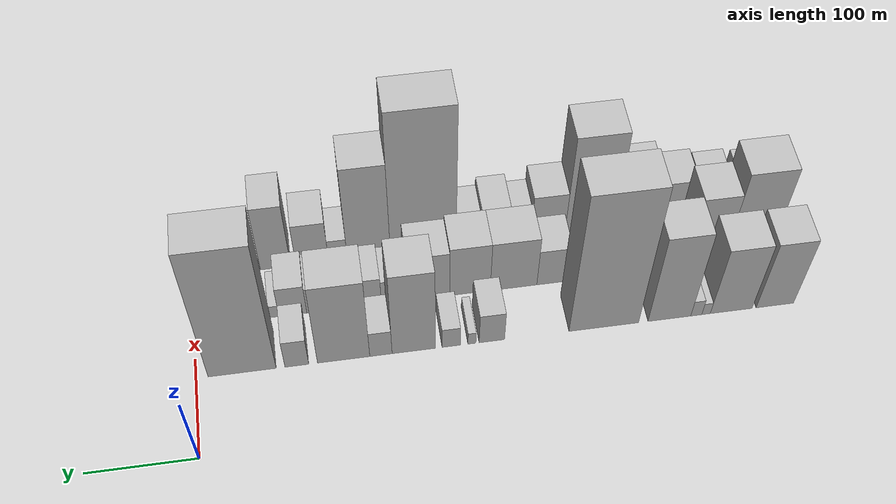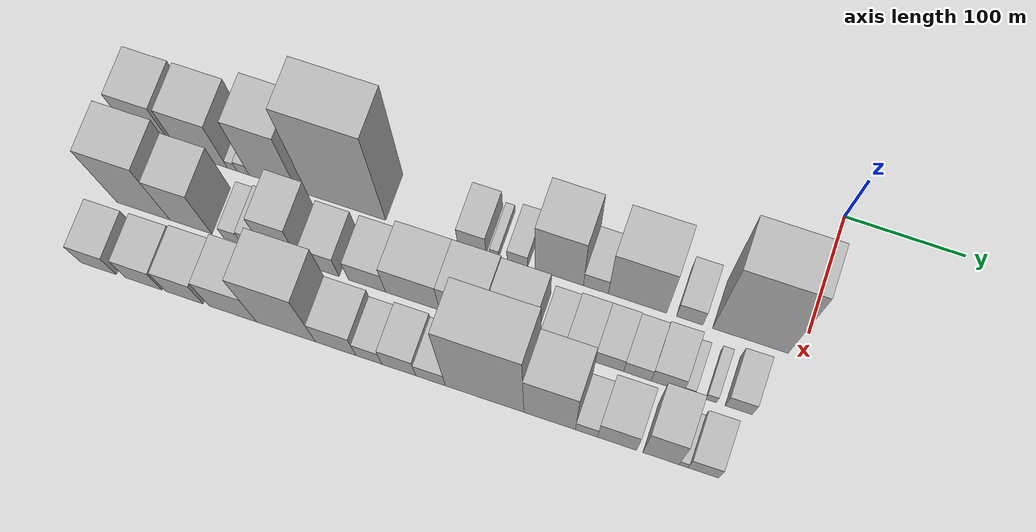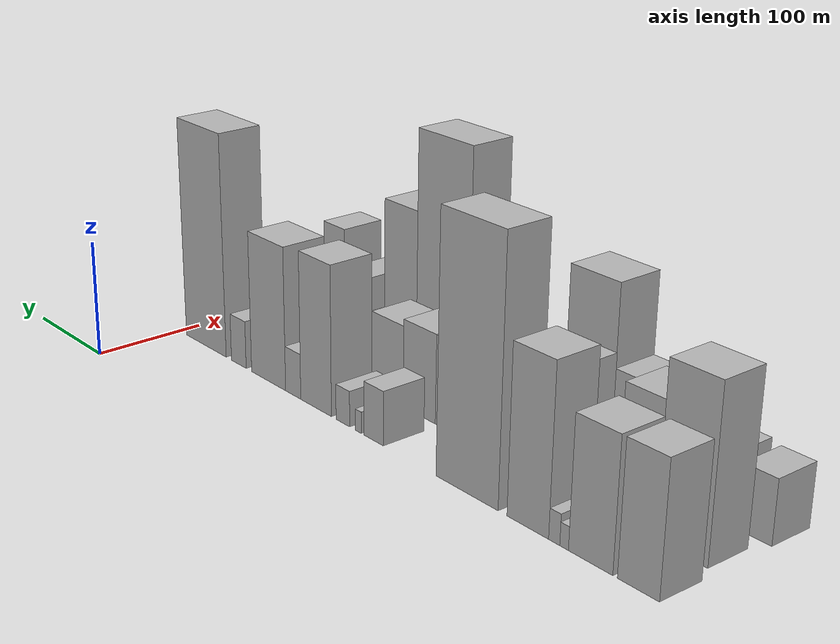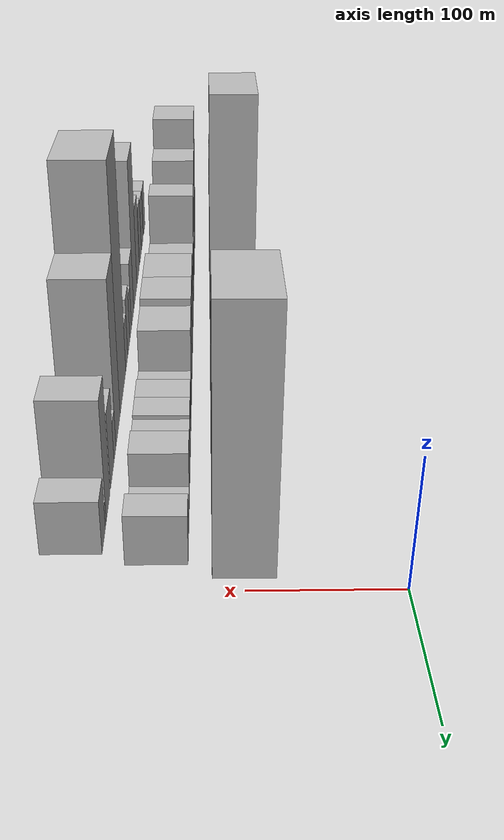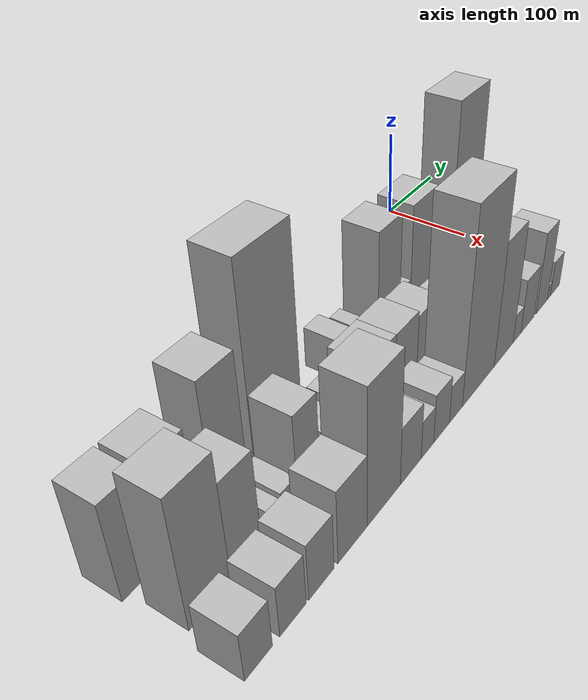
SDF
<sdf version="1.6">
 <world name="default">
  <model name="building_1">
   <static>1</static>
   <pose>100.0000 -541.8495 0 0.000000 0.000000 0.000000</pose>
   <link name="link">
    <pose>0 0 51.00 0 0 0</pose>
    <collision name="collision"><geometry><box><size>40.0000 36.3010 102.0000</size></box></geometry></collision>
    <visual name="visual">
     <cast_shadows>0</cast_shadows>
     <geometry><box><size>40.0000 36.3010 102.0000</size></box></geometry>
     <material>
      <script>
       <uri>model://HANNAS_wall/materials/scripts</uri>
       <uri>model://HANNAS_wall/materials/textures</uri>
       <name>vrc/HANNAS_wall</name>
      </script>
     </material>
    </visual>
   </link>
  </model>
  <model name="building_2">
   <static>1</static>
   <pose>100.0000 -499.5074 0 0.000000 0.000000 0.000000</pose>
   <link name="link">
    <pose>0 0 51.00 0 0 0</pose>
    <collision name="collision"><geometry><box><size>40.0000 40.3831 102.0000</size></box></geometry></collision>
    <visual name="visual">
     <cast_shadows>0</cast_shadows>
     <geometry><box><size>40.0000 40.3831 102.0000</size></box></geometry>
     <material>
      <script>
       <uri>model://HANNAS_wall/materials/scripts</uri>
       <uri>model://HANNAS_wall/materials/textures</uri>
       <name>vrc/HANNAS_wall</name>
      </script>
     </material>
    </visual>
   </link>
  </model>
  <model name="building_3">
   <static>1</static>
   <pose>100.0000 -475.2443 0 0.000000 0.000000 0.000000</pose>
   <link name="link">
    <pose>0 0 9.00 0 0 0</pose>
    <collision name="collision"><geometry><box><size>40.0000 8.1431 18.0000</size></box></geometry></collision>
    <visual name="visual">
     <cast_shadows>0</cast_shadows>
     <geometry><box><size>40.0000 8.1431 18.0000</size></box></geometry>
     <material>
      <script>
       <uri>model://HANNAS_wall/materials/scripts</uri>
       <uri>model://HANNAS_wall/materials/textures</uri>
       <name>vrc/HANNAS_wall</name>
      </script>
     </material>
    </visual>
   </link>
  </model>
  <model name="building_4">
   <static>1</static>
   <pose>100.0000 -465.8494 0 0.000000 0.000000 0.000000</pose>
   <link name="link">
    <pose>0 0 12.00 0 0 0</pose>
    <collision name="collision"><geometry><box><size>40.0000 10.6468 24.0000</size></box></geometry></collision>
    <visual name="visual">
     <cast_shadows>0</cast_shadows>
     <geometry><box><size>40.0000 10.6468 24.0000</size></box></geometry>
     <material>
      <script>
       <uri>model://HANNAS_wall/materials/scripts</uri>
       <uri>model://HANNAS_wall/materials/textures</uri>
       <name>vrc/HANNAS_wall</name>
      </script>
     </material>
    </visual>
   </link>
  </model>
  <model name="building_5">
   <static>1</static>
   <pose>100.0000 -440.0433 0 0.000000 0.000000 0.000000</pose>
   <link name="link">
    <pose>0 0 66.00 0 0 0</pose>
    <collision name="collision"><geometry><box><size>40.0000 40.9655 132.0000</size></box></geometry></collision>
    <visual name="visual">
     <cast_shadows>0</cast_shadows>
     <geometry><box><size>40.0000 40.9655 132.0000</size></box></geometry>
     <material>
      <script>
       <uri>model://HANNAS_wall/materials/scripts</uri>
       <uri>model://HANNAS_wall/materials/textures</uri>
       <name>vrc/HANNAS_wall</name>
      </script>
     </material>
    </visual>
   </link>
  </model>
  <model name="building_6">
   <static>1</static>
   <pose>100.0000 -377.4662 0 0.000000 0.000000 0.000000</pose>
   <link name="link">
    <pose>0 0 103.50 0 0 0</pose>
    <collision name="collision"><geometry><box><size>40.0000 66.1885 207.0000</size></box></geometry></collision>
    <visual name="visual">
     <cast_shadows>0</cast_shadows>
     <geometry><box><size>40.0000 66.1885 207.0000</size></box></geometry>
     <material>
      <script>
       <uri>model://HANNAS_wall/materials/scripts</uri>
       <uri>model://HANNAS_wall/materials/textures</uri>
       <name>vrc/HANNAS_wall</name>
      </script>
     </material>
    </visual>
   </link>
  </model>
  <model name="building_7">
   <static>1</static>
   <pose>100.0000 -271.7375 0 0.000000 0.000000 0.000000</pose>
   <link name="link">
    <pose>0 0 22.50 0 0 0</pose>
    <collision name="collision"><geometry><box><size>40.0000 23.7564 45.0000</size></box></geometry></collision>
    <visual name="visual">
     <cast_shadows>0</cast_shadows>
     <geometry><box><size>40.0000 23.7564 45.0000</size></box></geometry>
     <material>
      <script>
       <uri>model://HANNAS_wall/materials/scripts</uri>
       <uri>model://HANNAS_wall/materials/textures</uri>
       <name>vrc/HANNAS_wall</name>
      </script>
     </material>
    </visual>
   </link>
  </model>
  <model name="building_8">
   <static>1</static>
   <pose>100.0000 -253.1174 0 0.000000 0.000000 0.000000</pose>
   <link name="link">
    <pose>0 0 9.00 0 0 0</pose>
    <collision name="collision"><geometry><box><size>40.0000 7.4837 18.0000</size></box></geometry></collision>
    <visual name="visual">
     <cast_shadows>0</cast_shadows>
     <geometry><box><size>40.0000 7.4837 18.0000</size></box></geometry>
     <material>
      <script>
       <uri>model://HANNAS_wall/materials/scripts</uri>
       <uri>model://HANNAS_wall/materials/textures</uri>
       <name>vrc/HANNAS_wall</name>
      </script>
     </material>
    </visual>
   </link>
  </model>
  <model name="building_9">
   <static>1</static>
   <pose>100.0000 -233.8232 0 0.000000 0.000000 0.000000</pose>
   <link name="link">
    <pose>0 0 15.00 0 0 0</pose>
    <collision name="collision"><geometry><box><size>40.0000 17.1046 30.0000</size></box></geometry></collision>
    <visual name="visual">
     <cast_shadows>0</cast_shadows>
     <geometry><box><size>40.0000 17.1046 30.0000</size></box></geometry>
     <material>
      <script>
       <uri>model://HANNAS_wall/materials/scripts</uri>
       <uri>model://HANNAS_wall/materials/textures</uri>
       <name>vrc/HANNAS_wall</name>
      </script>
     </material>
    </visual>
   </link>
  </model>
  <model name="building_10">
   <static>1</static>
   <pose>100.0000 -199.1108 0 0.000000 0.000000 0.000000</pose>
   <link name="link">
    <pose>0 0 63.00 0 0 0</pose>
    <collision name="collision"><geometry><box><size>40.0000 40.3202 126.0000</size></box></geometry></collision>
    <visual name="visual">
     <cast_shadows>0</cast_shadows>
     <geometry><box><size>40.0000 40.3202 126.0000</size></box></geometry>
     <material>
      <script>
       <uri>model://HANNAS_wall/materials/scripts</uri>
       <uri>model://HANNAS_wall/materials/textures</uri>
       <name>vrc/HANNAS_wall</name>
      </script>
     </material>
    </visual>
   </link>
  </model>
  <model name="building_11">
   <static>1</static>
   <pose>100.0000 -168.6523 0 0.000000 0.000000 0.000000</pose>
   <link name="link">
    <pose>0 0 19.50 0 0 0</pose>
    <collision name="collision"><geometry><box><size>40.0000 20.5967 39.0000</size></box></geometry></collision>
    <visual name="visual">
     <cast_shadows>0</cast_shadows>
     <geometry><box><size>40.0000 20.5967 39.0000</size></box></geometry>
     <material>
      <script>
       <uri>model://HANNAS_wall/materials/scripts</uri>
       <uri>model://HANNAS_wall/materials/textures</uri>
       <name>vrc/HANNAS_wall</name>
      </script>
     </material>
    </visual>
   </link>
  </model>
  <model name="building_12">
   <static>1</static>
   <pose>100.0000 -134.3191 0 0.000000 0.000000 0.000000</pose>
   <link name="link">
    <pose>0 0 61.50 0 0 0</pose>
    <collision name="collision"><geometry><box><size>40.0000 48.0697 123.0000</size></box></geometry></collision>
    <visual name="visual">
     <cast_shadows>0</cast_shadows>
     <geometry><box><size>40.0000 48.0697 123.0000</size></box></geometry>
     <material>
      <script>
       <uri>model://HANNAS_wall/materials/scripts</uri>
       <uri>model://HANNAS_wall/materials/textures</uri>
       <name>vrc/HANNAS_wall</name>
      </script>
     </material>
    </visual>
   </link>
  </model>
  <model name="building_13">
   <static>1</static>
   <pose>100.0000 -91.4313 0 0.000000 0.000000 0.000000</pose>
   <link name="link">
    <pose>0 0 21.00 0 0 0</pose>
    <collision name="collision"><geometry><box><size>40.0000 21.7058 42.0000</size></box></geometry></collision>
    <visual name="visual">
     <cast_shadows>0</cast_shadows>
     <geometry><box><size>40.0000 21.7058 42.0000</size></box></geometry>
     <material>
      <script>
       <uri>model://HANNAS_wall/materials/scripts</uri>
       <uri>model://HANNAS_wall/materials/textures</uri>
       <name>vrc/HANNAS_wall</name>
      </script>
     </material>
    </visual>
   </link>
  </model>
  <model name="building_14">
   <static>1</static>
   <pose>100.0000 -41.6882 0 0.000000 0.000000 0.000000</pose>
   <link name="link">
    <pose>0 0 97.50 0 0 0</pose>
    <collision name="collision"><geometry><box><size>40.0000 61.7805 195.0000</size></box></geometry></collision>
    <visual name="visual">
     <cast_shadows>0</cast_shadows>
     <geometry><box><size>40.0000 61.7805 195.0000</size></box></geometry>
     <material>
      <script>
       <uri>model://HANNAS_wall/materials/scripts</uri>
       <uri>model://HANNAS_wall/materials/textures</uri>
       <name>vrc/HANNAS_wall</name>
      </script>
     </material>
    </visual>
   </link>
  </model>
  <model name="building_30">
   <static>1</static>
   <pose>155.0000 -529.2739 0 0.000000 0.000000 0.000000</pose>
   <link name="link">
    <pose>0 0 67.50 0 0 0</pose>
    <collision name="collision"><geometry><box><size>40.0000 45.4523 135.0000</size></box></geometry></collision>
    <visual name="visual">
     <cast_shadows>0</cast_shadows>
     <geometry><box><size>40.0000 45.4523 135.0000</size></box></geometry>
     <material>
      <script>
       <uri>model://HANNAS_wall/materials/scripts</uri>
       <uri>model://HANNAS_wall/materials/textures</uri>
       <name>vrc/HANNAS_wall</name>
      </script>
     </material>
    </visual>
   </link>
  </model>
  <model name="building_31">
   <static>1</static>
   <pose>155.0000 -488.7142 0 0.000000 0.000000 0.000000</pose>
   <link name="link">
    <pose>0 0 52.50 0 0 0</pose>
    <collision name="collision"><geometry><box><size>40.0000 35.6670 105.0000</size></box></geometry></collision>
    <visual name="visual">
     <cast_shadows>0</cast_shadows>
     <geometry><box><size>40.0000 35.6670 105.0000</size></box></geometry>
     <material>
      <script>
       <uri>model://HANNAS_wall/materials/scripts</uri>
       <uri>model://HANNAS_wall/materials/textures</uri>
       <name>vrc/HANNAS_wall</name>
      </script>
     </material>
    </visual>
   </link>
  </model>
  <model name="building_32">
   <static>1</static>
   <pose>155.0000 -453.1884 0 0.000000 0.000000 0.000000</pose>
   <link name="link">
    <pose>0 0 15.00 0 0 0</pose>
    <collision name="collision"><geometry><box><size>40.0000 15.3847 30.0000</size></box></geometry></collision>
    <visual name="visual">
     <cast_shadows>0</cast_shadows>
     <geometry><box><size>40.0000 15.3847 30.0000</size></box></geometry>
     <material>
      <script>
       <uri>model://HANNAS_wall/materials/scripts</uri>
       <uri>model://HANNAS_wall/materials/textures</uri>
       <name>vrc/HANNAS_wall</name>
      </script>
     </material>
    </visual>
   </link>
  </model>
  <model name="building_33">
   <static>1</static>
   <pose>155.0000 -435.5298 0 0.000000 0.000000 0.000000</pose>
   <link name="link">
    <pose>0 0 18.00 0 0 0</pose>
    <collision name="collision"><geometry><box><size>40.0000 19.9325 36.0000</size></box></geometry></collision>
    <visual name="visual">
     <cast_shadows>0</cast_shadows>
     <geometry><box><size>40.0000 19.9325 36.0000</size></box></geometry>
     <material>
      <script>
       <uri>model://HANNAS_wall/materials/scripts</uri>
       <uri>model://HANNAS_wall/materials/textures</uri>
       <name>vrc/HANNAS_wall</name>
      </script>
     </material>
    </visual>
   </link>
  </model>
  <model name="building_34">
   <static>1</static>
   <pose>155.0000 -410.4630 0 0.000000 0.000000 0.000000</pose>
   <link name="link">
    <pose>0 0 49.50 0 0 0</pose>
    <collision name="collision"><geometry><box><size>40.0000 30.2012 99.0000</size></box></geometry></collision>
    <visual name="visual">
     <cast_shadows>0</cast_shadows>
     <geometry><box><size>40.0000 30.2012 99.0000</size></box></geometry>
     <material>
      <script>
       <uri>model://HANNAS_wall/materials/scripts</uri>
       <uri>model://HANNAS_wall/materials/textures</uri>
       <name>vrc/HANNAS_wall</name>
      </script>
     </material>
    </visual>
   </link>
  </model>
  <model name="building_35">
   <static>1</static>
   <pose>155.0000 -377.3726 0 0.000000 0.000000 0.000000</pose>
   <link name="link">
    <pose>0 0 27.00 0 0 0</pose>
    <collision name="collision"><geometry><box><size>40.0000 27.9795 54.0000</size></box></geometry></collision>
    <visual name="visual">
     <cast_shadows>0</cast_shadows>
     <geometry><box><size>40.0000 27.9795 54.0000</size></box></geometry>
     <material>
      <script>
       <uri>model://HANNAS_wall/materials/scripts</uri>
       <uri>model://HANNAS_wall/materials/textures</uri>
       <name>vrc/HANNAS_wall</name>
      </script>
     </material>
    </visual>
   </link>
  </model>
  <model name="building_36">
   <static>1</static>
   <pose>155.0000 -339.8803 0 0.000000 0.000000 0.000000</pose>
   <link name="link">
    <pose>0 0 27.00 0 0 0</pose>
    <collision name="collision"><geometry><box><size>40.0000 31.0051 54.0000</size></box></geometry></collision>
    <visual name="visual">
     <cast_shadows>0</cast_shadows>
     <geometry><box><size>40.0000 31.0051 54.0000</size></box></geometry>
     <material>
      <script>
       <uri>model://HANNAS_wall/materials/scripts</uri>
       <uri>model://HANNAS_wall/materials/textures</uri>
       <name>vrc/HANNAS_wall</name>
      </script>
     </material>
    </visual>
   </link>
  </model>
  <model name="building_37">
   <static>1</static>
   <pose>155.0000 -301.8928 0 0.000000 0.000000 0.000000</pose>
   <link name="link">
    <pose>0 0 37.50 0 0 0</pose>
    <collision name="collision"><geometry><box><size>40.0000 44.9698 75.0000</size></box></geometry></collision>
    <visual name="visual">
     <cast_shadows>0</cast_shadows>
     <geometry><box><size>40.0000 44.9698 75.0000</size></box></geometry>
     <material>
      <script>
       <uri>model://HANNAS_wall/materials/scripts</uri>
       <uri>model://HANNAS_wall/materials/textures</uri>
       <name>vrc/HANNAS_wall</name>
      </script>
     </material>
    </visual>
   </link>
  </model>
  <model name="building_38">
   <static>1</static>
   <pose>155.0000 -259.9744 0 0.000000 0.000000 0.000000</pose>
   <link name="link">
    <pose>0 0 37.50 0 0 0</pose>
    <collision name="collision"><geometry><box><size>40.0000 38.8671 75.0000</size></box></geometry></collision>
    <visual name="visual">
     <cast_shadows>0</cast_shadows>
     <geometry><box><size>40.0000 38.8671 75.0000</size></box></geometry>
     <material>
      <script>
       <uri>model://HANNAS_wall/materials/scripts</uri>
       <uri>model://HANNAS_wall/materials/textures</uri>
       <name>vrc/HANNAS_wall</name>
      </script>
     </material>
    </visual>
   </link>
  </model>
  <model name="building_39">
   <static>1</static>
   <pose>155.0000 -220.7351 0 0.000000 0.000000 0.000000</pose>
   <link name="link">
    <pose>0 0 34.50 0 0 0</pose>
    <collision name="collision"><geometry><box><size>40.0000 39.6115 69.0000</size></box></geometry></collision>
    <visual name="visual">
     <cast_shadows>0</cast_shadows>
     <geometry><box><size>40.0000 39.6115 69.0000</size></box></geometry>
     <material>
      <script>
       <uri>model://HANNAS_wall/materials/scripts</uri>
       <uri>model://HANNAS_wall/materials/textures</uri>
       <name>vrc/HANNAS_wall</name>
      </script>
     </material>
    </visual>
   </link>
  </model>
  <model name="building_40">
   <static>1</static>
   <pose>155.0000 -186.2544 0 0.000000 0.000000 0.000000</pose>
   <link name="link">
    <pose>0 0 18.00 0 0 0</pose>
    <collision name="collision"><geometry><box><size>40.0000 21.3499 36.0000</size></box></geometry></collision>
    <visual name="visual">
     <cast_shadows>0</cast_shadows>
     <geometry><box><size>40.0000 21.3499 36.0000</size></box></geometry>
     <material>
      <script>
       <uri>model://HANNAS_wall/materials/scripts</uri>
       <uri>model://HANNAS_wall/materials/textures</uri>
       <name>vrc/HANNAS_wall</name>
      </script>
     </material>
    </visual>
   </link>
  </model>
  <model name="building_41">
   <static>1</static>
   <pose>155.0000 -163.4120 0 0.000000 0.000000 0.000000</pose>
   <link name="link">
    <pose>0 0 21.00 0 0 0</pose>
    <collision name="collision"><geometry><box><size>40.0000 24.3349 42.0000</size></box></geometry></collision>
    <visual name="visual">
     <cast_shadows>0</cast_shadows>
     <geometry><box><size>40.0000 24.3349 42.0000</size></box></geometry>
     <material>
      <script>
       <uri>model://HANNAS_wall/materials/scripts</uri>
       <uri>model://HANNAS_wall/materials/textures</uri>
       <name>vrc/HANNAS_wall</name>
      </script>
     </material>
    </visual>
   </link>
  </model>
  <model name="building_42">
   <static>1</static>
   <pose>155.0000 -139.5206 0 0.000000 0.000000 0.000000</pose>
   <link name="link">
    <pose>0 0 21.00 0 0 0</pose>
    <collision name="collision"><geometry><box><size>40.0000 23.4479 42.0000</size></box></geometry></collision>
    <visual name="visual">
     <cast_shadows>0</cast_shadows>
     <geometry><box><size>40.0000 23.4479 42.0000</size></box></geometry>
     <material>
      <script>
       <uri>model://HANNAS_wall/materials/scripts</uri>
       <uri>model://HANNAS_wall/materials/textures</uri>
       <name>vrc/HANNAS_wall</name>
      </script>
     </material>
    </visual>
   </link>
  </model>
  <model name="building_43">
   <static>1</static>
   <pose>155.0000 -116.5061 0 0.000000 0.000000 0.000000</pose>
   <link name="link">
    <pose>0 0 19.50 0 0 0</pose>
    <collision name="collision"><geometry><box><size>40.0000 22.5811 39.0000</size></box></geometry></collision>
    <visual name="visual">
     <cast_shadows>0</cast_shadows>
     <geometry><box><size>40.0000 22.5811 39.0000</size></box></geometry>
     <material>
      <script>
       <uri>model://HANNAS_wall/materials/scripts</uri>
       <uri>model://HANNAS_wall/materials/textures</uri>
       <name>vrc/HANNAS_wall</name>
      </script>
     </material>
    </visual>
   </link>
  </model>
  <model name="building_44">
   <static>1</static>
   <pose>155.0000 -92.1040 0 0.000000 0.000000 0.000000</pose>
   <link name="link">
    <pose>0 0 22.50 0 0 0</pose>
    <collision name="collision"><geometry><box><size>40.0000 26.2231 45.0000</size></box></geometry></collision>
    <visual name="visual">
     <cast_shadows>0</cast_shadows>
     <geometry><box><size>40.0000 26.2231 45.0000</size></box></geometry>
     <material>
      <script>
       <uri>model://HANNAS_wall/materials/scripts</uri>
       <uri>model://HANNAS_wall/materials/textures</uri>
       <name>vrc/HANNAS_wall</name>
      </script>
     </material>
    </visual>
   </link>
  </model>
  <model name="building_45">
   <static>1</static>
   <pose>155.0000 -74.5181 0 0.000000 0.000000 0.000000</pose>
   <link name="link">
    <pose>0 0 9.00 0 0 0</pose>
    <collision name="collision"><geometry><box><size>40.0000 8.9486 18.0000</size></box></geometry></collision>
    <visual name="visual">
     <cast_shadows>0</cast_shadows>
     <geometry><box><size>40.0000 8.9486 18.0000</size></box></geometry>
     <material>
      <script>
       <uri>model://HANNAS_wall/materials/scripts</uri>
       <uri>model://HANNAS_wall/materials/textures</uri>
       <name>vrc/HANNAS_wall</name>
      </script>
     </material>
    </visual>
   </link>
  </model>
  <model name="building_46">
   <static>1</static>
   <pose>155.0000 -56.6547 0 0.000000 0.000000 0.000000</pose>
   <link name="link">
    <pose>0 0 10.50 0 0 0</pose>
    <collision name="collision"><geometry><box><size>40.0000 8.7783 21.0000</size></box></geometry></collision>
    <visual name="visual">
     <cast_shadows>0</cast_shadows>
     <geometry><box><size>40.0000 8.7783 21.0000</size></box></geometry>
     <material>
      <script>
       <uri>model://HANNAS_wall/materials/scripts</uri>
       <uri>model://HANNAS_wall/materials/textures</uri>
       <name>vrc/HANNAS_wall</name>
      </script>
     </material>
    </visual>
   </link>
  </model>
  <model name="building_47">
   <static>1</static>
   <pose>155.0000 -34.2944 0 0.000000 0.000000 0.000000</pose>
   <link name="link">
    <pose>0 0 19.50 0 0 0</pose>
    <collision name="collision"><geometry><box><size>40.0000 21.9421 39.0000</size></box></geometry></collision>
    <visual name="visual">
     <cast_shadows>0</cast_shadows>
     <geometry><box><size>40.0000 21.9421 39.0000</size></box></geometry>
     <material>
      <script>
       <uri>model://HANNAS_wall/materials/scripts</uri>
       <uri>model://HANNAS_wall/materials/textures</uri>
       <name>vrc/HANNAS_wall</name>
      </script>
     </material>
    </visual>
   </link>
  </model>
  <model name="building_63">
   <static>1</static>
   <pose>210.0000 -545.0633 0 0.000000 0.000000 0.000000</pose>
   <link name="link">
    <pose>0 0 25.50 0 0 0</pose>
    <collision name="collision"><geometry><box><size>40.0000 29.8735 51.0000</size></box></geometry></collision>
    <visual name="visual">
     <cast_shadows>0</cast_shadows>
     <geometry><box><size>40.0000 29.8735 51.0000</size></box></geometry>
     <material>
      <script>
       <uri>model://HANNAS_wall/materials/scripts</uri>
       <uri>model://HANNAS_wall/materials/textures</uri>
       <name>vrc/HANNAS_wall</name>
      </script>
     </material>
    </visual>
   </link>
  </model>
  <model name="building_64">
   <static>1</static>
   <pose>210.0000 -506.7309 0 0.000000 0.000000 0.000000</pose>
   <link name="link">
    <pose>0 0 27.00 0 0 0</pose>
    <collision name="collision"><geometry><box><size>40.0000 30.7912 54.0000</size></box></geometry></collision>
    <visual name="visual">
     <cast_shadows>0</cast_shadows>
     <geometry><box><size>40.0000 30.7912 54.0000</size></box></geometry>
     <material>
      <script>
       <uri>model://HANNAS_wall/materials/scripts</uri>
       <uri>model://HANNAS_wall/materials/textures</uri>
       <name>vrc/HANNAS_wall</name>
      </script>
     </material>
    </visual>
   </link>
  </model>
  <model name="building_65">
   <static>1</static>
   <pose>210.0000 -472.5066 0 0.000000 0.000000 0.000000</pose>
   <link name="link">
    <pose>0 0 30.00 0 0 0</pose>
    <collision name="collision"><geometry><box><size>40.0000 31.6575 60.0000</size></box></geometry></collision>
    <visual name="visual">
     <cast_shadows>0</cast_shadows>
     <geometry><box><size>40.0000 31.6575 60.0000</size></box></geometry>
     <material>
      <script>
       <uri>model://HANNAS_wall/materials/scripts</uri>
       <uri>model://HANNAS_wall/materials/textures</uri>
       <name>vrc/HANNAS_wall</name>
      </script>
     </material>
    </visual>
   </link>
  </model>
  <model name="building_66">
   <static>1</static>
   <pose>210.0000 -431.6731 0 0.000000 0.000000 0.000000</pose>
   <link name="link">
    <pose>0 0 39.00 0 0 0</pose>
    <collision name="collision"><geometry><box><size>40.0000 40.0095 78.0000</size></box></geometry></collision>
    <visual name="visual">
     <cast_shadows>0</cast_shadows>
     <geometry><box><size>40.0000 40.0095 78.0000</size></box></geometry>
     <material>
      <script>
       <uri>model://HANNAS_wall/materials/scripts</uri>
       <uri>model://HANNAS_wall/materials/textures</uri>
       <name>vrc/HANNAS_wall</name>
      </script>
     </material>
    </visual>
   </link>
  </model>
  <model name="building_67">
   <static>1</static>
   <pose>210.0000 -387.0181 0 0.000000 0.000000 0.000000</pose>
   <link name="link">
    <pose>0 0 72.00 0 0 0</pose>
    <collision name="collision"><geometry><box><size>40.0000 49.3004 144.0000</size></box></geometry></collision>
    <visual name="visual">
     <cast_shadows>0</cast_shadows>
     <geometry><box><size>40.0000 49.3004 144.0000</size></box></geometry>
     <material>
      <script>
       <uri>model://HANNAS_wall/materials/scripts</uri>
       <uri>model://HANNAS_wall/materials/textures</uri>
       <name>vrc/HANNAS_wall</name>
      </script>
     </material>
    </visual>
   </link>
  </model>
  <model name="building_68">
   <static>1</static>
   <pose>210.0000 -345.5546 0 0.000000 0.000000 0.000000</pose>
   <link name="link">
    <pose>0 0 31.50 0 0 0</pose>
    <collision name="collision"><geometry><box><size>40.0000 33.6267 63.0000</size></box></geometry></collision>
    <visual name="visual">
     <cast_shadows>0</cast_shadows>
     <geometry><box><size>40.0000 33.6267 63.0000</size></box></geometry>
     <material>
      <script>
       <uri>model://HANNAS_wall/materials/scripts</uri>
       <uri>model://HANNAS_wall/materials/textures</uri>
       <name>vrc/HANNAS_wall</name>
      </script>
     </material>
    </visual>
   </link>
  </model>
  <model name="building_69">
   <static>1</static>
   <pose>210.0000 -317.9775 0 0.000000 0.000000 0.000000</pose>
   <link name="link">
    <pose>0 0 21.00 0 0 0</pose>
    <collision name="collision"><geometry><box><size>40.0000 21.5273 42.0000</size></box></geometry></collision>
    <visual name="visual">
     <cast_shadows>0</cast_shadows>
     <geometry><box><size>40.0000 21.5273 42.0000</size></box></geometry>
     <material>
      <script>
       <uri>model://HANNAS_wall/materials/scripts</uri>
       <uri>model://HANNAS_wall/materials/textures</uri>
       <name>vrc/HANNAS_wall</name>
      </script>
     </material>
    </visual>
   </link>
  </model>
  <model name="building_70">
   <static>1</static>
   <pose>210.0000 -293.2710 0 0.000000 0.000000 0.000000</pose>
   <link name="link">
    <pose>0 0 27.00 0 0 0</pose>
    <collision name="collision"><geometry><box><size>40.0000 27.8857 54.0000</size></box></geometry></collision>
    <visual name="visual">
     <cast_shadows>0</cast_shadows>
     <geometry><box><size>40.0000 27.8857 54.0000</size></box></geometry>
     <material>
      <script>
       <uri>model://HANNAS_wall/materials/scripts</uri>
       <uri>model://HANNAS_wall/materials/textures</uri>
       <name>vrc/HANNAS_wall</name>
      </script>
     </material>
    </visual>
   </link>
  </model>
  <model name="building_71">
   <static>1</static>
   <pose>210.0000 -267.1889 0 0.000000 0.000000 0.000000</pose>
   <link name="link">
    <pose>0 0 21.00 0 0 0</pose>
    <collision name="collision"><geometry><box><size>40.0000 24.2786 42.0000</size></box></geometry></collision>
    <visual name="visual">
     <cast_shadows>0</cast_shadows>
     <geometry><box><size>40.0000 24.2786 42.0000</size></box></geometry>
     <material>
      <script>
       <uri>model://HANNAS_wall/materials/scripts</uri>
       <uri>model://HANNAS_wall/materials/textures</uri>
       <name>vrc/HANNAS_wall</name>
      </script>
     </material>
    </visual>
   </link>
  </model>
  <model name="building_72">
   <static>1</static>
   <pose>210.0000 -222.9359 0 0.000000 0.000000 0.000000</pose>
   <link name="link">
    <pose>0 0 103.50 0 0 0</pose>
    <collision name="collision"><geometry><box><size>40.0000 64.2273 207.0000</size></box></geometry></collision>
    <visual name="visual">
     <cast_shadows>0</cast_shadows>
     <geometry><box><size>40.0000 64.2273 207.0000</size></box></geometry>
     <material>
      <script>
       <uri>model://HANNAS_wall/materials/scripts</uri>
       <uri>model://HANNAS_wall/materials/textures</uri>
       <name>vrc/HANNAS_wall</name>
      </script>
     </material>
    </visual>
   </link>
  </model>
  <model name="building_73">
   <static>1</static>
   <pose>210.0000 -169.8954 0 0.000000 0.000000 0.000000</pose>
   <link name="link">
    <pose>0 0 69.00 0 0 0</pose>
    <collision name="collision"><geometry><box><size>40.0000 41.8537 138.0000</size></box></geometry></collision>
    <visual name="visual">
     <cast_shadows>0</cast_shadows>
     <geometry><box><size>40.0000 41.8537 138.0000</size></box></geometry>
     <material>
      <script>
       <uri>model://HANNAS_wall/materials/scripts</uri>
       <uri>model://HANNAS_wall/materials/textures</uri>
       <name>vrc/HANNAS_wall</name>
      </script>
     </material>
    </visual>
   </link>
  </model>
  <model name="building_74">
   <static>1</static>
   <pose>210.0000 -139.9343 0 0.000000 0.000000 0.000000</pose>
   <link name="link">
    <pose>0 0 16.50 0 0 0</pose>
    <collision name="collision"><geometry><box><size>40.0000 18.0686 33.0000</size></box></geometry></collision>
    <visual name="visual">
     <cast_shadows>0</cast_shadows>
     <geometry><box><size>40.0000 18.0686 33.0000</size></box></geometry>
     <material>
      <script>
       <uri>model://HANNAS_wall/materials/scripts</uri>
       <uri>model://HANNAS_wall/materials/textures</uri>
       <name>vrc/HANNAS_wall</name>
      </script>
     </material>
    </visual>
   </link>
  </model>
  <model name="building_75">
   <static>1</static>
   <pose>210.0000 -115.1379 0 0.000000 0.000000 0.000000</pose>
   <link name="link">
    <pose>0 0 31.50 0 0 0</pose>
    <collision name="collision"><geometry><box><size>40.0000 31.5242 63.0000</size></box></geometry></collision>
    <visual name="visual">
     <cast_shadows>0</cast_shadows>
     <geometry><box><size>40.0000 31.5242 63.0000</size></box></geometry>
     <material>
      <script>
       <uri>model://HANNAS_wall/materials/scripts</uri>
       <uri>model://HANNAS_wall/materials/textures</uri>
       <name>vrc/HANNAS_wall</name>
      </script>
     </material>
    </visual>
   </link>
  </model>
  <model name="building_76">
   <static>1</static>
   <pose>210.0000 -79.7993 0 0.000000 0.000000 0.000000</pose>
   <link name="link">
    <pose>0 0 48.00 0 0 0</pose>
    <collision name="collision"><geometry><box><size>40.0000 29.1528 96.0000</size></box></geometry></collision>
    <visual name="visual">
     <cast_shadows>0</cast_shadows>
     <geometry><box><size>40.0000 29.1528 96.0000</size></box></geometry>
     <material>
      <script>
       <uri>model://HANNAS_wall/materials/scripts</uri>
       <uri>model://HANNAS_wall/materials/textures</uri>
       <name>vrc/HANNAS_wall</name>
      </script>
     </material>
    </visual>
   </link>
  </model>
  <model name="building_77">
   <static>1</static>
   <pose>210.0000 -61.5707 0 0.000000 0.000000 0.000000</pose>
   <link name="link">
    <pose>0 0 9.00 0 0 0</pose>
    <collision name="collision"><geometry><box><size>40.0000 7.3044 18.0000</size></box></geometry></collision>
    <visual name="visual">
     <cast_shadows>0</cast_shadows>
     <geometry><box><size>40.0000 7.3044 18.0000</size></box></geometry>
     <material>
      <script>
       <uri>model://HANNAS_wall/materials/scripts</uri>
       <uri>model://HANNAS_wall/materials/textures</uri>
       <name>vrc/HANNAS_wall</name>
      </script>
     </material>
    </visual>
   </link>
  </model>
  <model name="building_78">
   <static>1</static>
   <pose>210.0000 -45.6595 0 0.000000 0.000000 0.000000</pose>
   <link name="link">
    <pose>0 0 21.00 0 0 0</pose>
    <collision name="collision"><geometry><box><size>40.0000 24.5181 42.0000</size></box></geometry></collision>
    <visual name="visual">
     <cast_shadows>0</cast_shadows>
     <geometry><box><size>40.0000 24.5181 42.0000</size></box></geometry>
     <material>
      <script>
       <uri>model://HANNAS_wall/materials/scripts</uri>
       <uri>model://HANNAS_wall/materials/textures</uri>
       <name>vrc/HANNAS_wall</name>
      </script>
     </material>
    </visual>
   </link>
  </model>
 </world>
</sdf>
